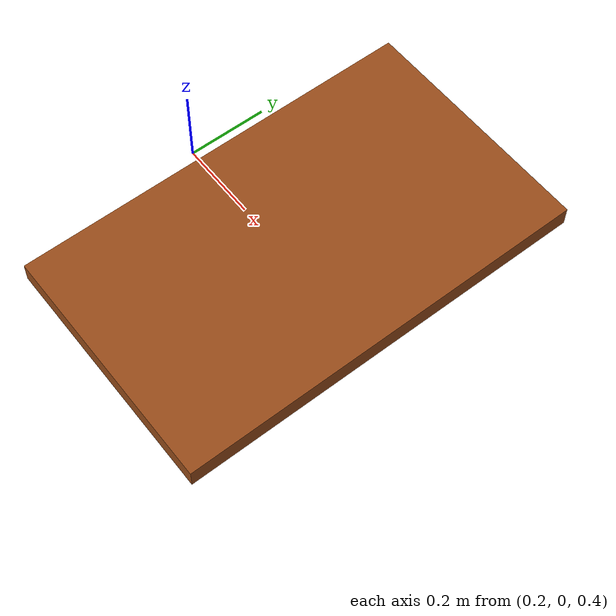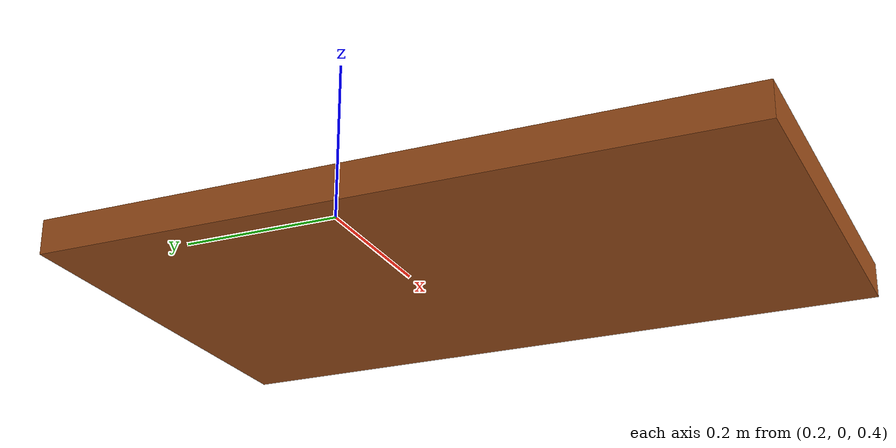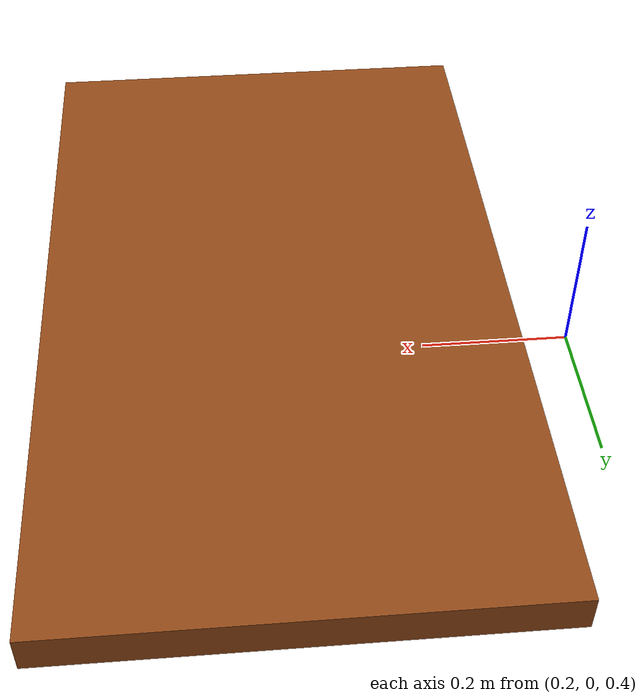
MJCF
<mujoco model="table">
  <worldbody>
    <body name="table" pos="0.6 0 0.25"> <!-- center of table at half the height -->
      <geom name="table_top" type="box" size="0.3 0.5 0.025" pos="0 0 0.25"
            rgba="0.6 0.3 0.1 1" contype="1" conaffinity="1" friction="1 0.01 0.001"/>
    </body>
  </worldbody>
</mujoco>
